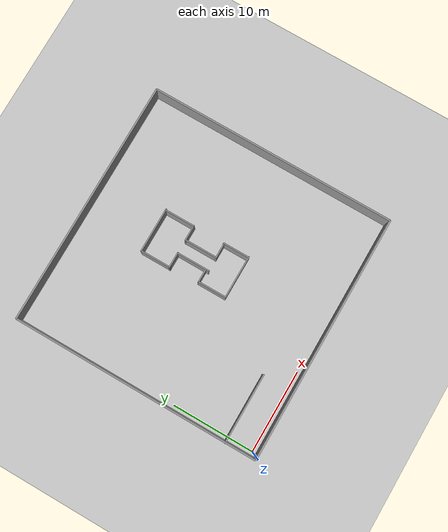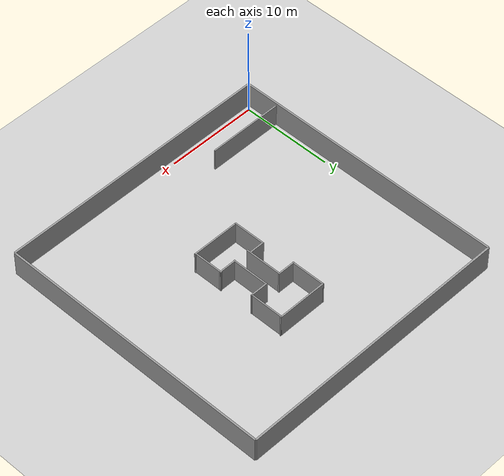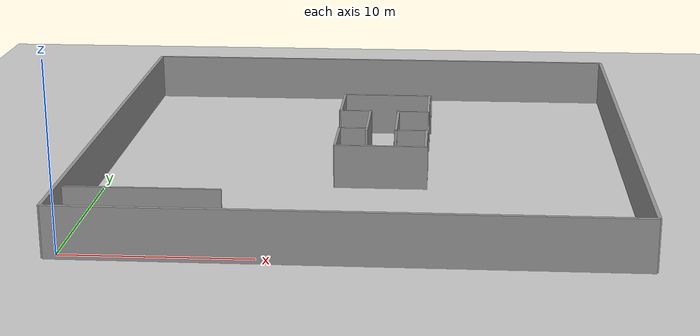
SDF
<?xml version="1.0" ?>

    <!-- this file is auto generated using pedsim_gazebo_plugin pkg -->
    <sdf version="1.5">
      <world name="default">

      <!-- Ground Plane -->

      <include>
        <uri>model://ground_plane</uri>
      </include>

      <include>
        <uri>model://sun</uri>
      </include>

     <model name='grey_wall_1'>
      <static>1</static>
      <link name='link'>

	  <pose frame=''>14.5 -0.5  1.4 0 0 0.0</pose>

        <collision name='collision'>
          <geometry>
            <box>

	     <size> 30.0 .2  2.8 </size>

      	   </box>
          </geometry>
          <max_contacts>10</max_contacts>
          <surface>
            <contact>
              <ode/>
            </contact>
            <bounce/>
            <friction>
              <torsional>
                <ode/>
              </torsional>
              <ode/>
            </friction>
          </surface>
        </collision>
        <visual name='visual'>
          <cast_shadows>0</cast_shadows>
          <geometry>
            <box>

	     <size> 30.0 .2  2.8 </size>

      	   </box>
       </geometry>
          <material>
            <script>
              <uri>model://grey_wall/materials/scripts</uri>
              <uri>model://grey_wall/materials/textures</uri>
              <name>vrc/grey_wall</name>
            </script>
          </material>
        </visual>
        <self_collide>0</self_collide>
        <enable_wind>0</enable_wind>
        <kinematic>0</kinematic>
      </link>
    </model>

     <model name='grey_wall_2'>
      <static>1</static>
      <link name='link'>

	  <pose frame=''>-0.5 14.5  1.4 0 0 1.57</pose>

        <collision name='collision'>
          <geometry>
            <box>

	     <size> 30.0 .2  2.8 </size>

      	   </box>
          </geometry>
          <max_contacts>10</max_contacts>
          <surface>
            <contact>
              <ode/>
            </contact>
            <bounce/>
            <friction>
              <torsional>
                <ode/>
              </torsional>
              <ode/>
            </friction>
          </surface>
        </collision>
        <visual name='visual'>
          <cast_shadows>0</cast_shadows>
          <geometry>
            <box>

	     <size> 30.0 .2  2.8 </size>

      	   </box>
       </geometry>
          <material>
            <script>
              <uri>model://grey_wall/materials/scripts</uri>
              <uri>model://grey_wall/materials/textures</uri>
              <name>vrc/grey_wall</name>
            </script>
          </material>
        </visual>
        <self_collide>0</self_collide>
        <enable_wind>0</enable_wind>
        <kinematic>0</kinematic>
      </link>
    </model>

     <model name='grey_wall_3'>
      <static>1</static>
      <link name='link'>

	  <pose frame=''>14.5 29.5  1.4 0 0 0.0</pose>

        <collision name='collision'>
          <geometry>
            <box>

	     <size> 30.0 .2  2.8 </size>

      	   </box>
          </geometry>
          <max_contacts>10</max_contacts>
          <surface>
            <contact>
              <ode/>
            </contact>
            <bounce/>
            <friction>
              <torsional>
                <ode/>
              </torsional>
              <ode/>
            </friction>
          </surface>
        </collision>
        <visual name='visual'>
          <cast_shadows>0</cast_shadows>
          <geometry>
            <box>

	     <size> 30.0 .2  2.8 </size>

      	   </box>
       </geometry>
          <material>
            <script>
              <uri>model://grey_wall/materials/scripts</uri>
              <uri>model://grey_wall/materials/textures</uri>
              <name>vrc/grey_wall</name>
            </script>
          </material>
        </visual>
        <self_collide>0</self_collide>
        <enable_wind>0</enable_wind>
        <kinematic>0</kinematic>
      </link>
    </model>

     <model name='grey_wall_4'>
      <static>1</static>
      <link name='link'>

	  <pose frame=''>29.5 14.5  1.4 0 0 1.57</pose>

        <collision name='collision'>
          <geometry>
            <box>

	     <size> 30.0 .2  2.8 </size>

      	   </box>
          </geometry>
          <max_contacts>10</max_contacts>
          <surface>
            <contact>
              <ode/>
            </contact>
            <bounce/>
            <friction>
              <torsional>
                <ode/>
              </torsional>
              <ode/>
            </friction>
          </surface>
        </collision>
        <visual name='visual'>
          <cast_shadows>0</cast_shadows>
          <geometry>
            <box>

	     <size> 30.0 .2  2.8 </size>

      	   </box>
       </geometry>
          <material>
            <script>
              <uri>model://grey_wall/materials/scripts</uri>
              <uri>model://grey_wall/materials/textures</uri>
              <name>vrc/grey_wall</name>
            </script>
          </material>
        </visual>
        <self_collide>0</self_collide>
        <enable_wind>0</enable_wind>
        <kinematic>0</kinematic>
      </link>
    </model>

    <model name='pedsim_model2'>
    <pose>-15854.3 -11256.4 0 0 -0 0</pose>
    <link name='Wall_27'>
      <collision name='Wall_27_Collision'>
        <geometry>
          <box>
            <size>8.5 0.15 2.5</size>
          </box>
        </geometry>
        <pose>0 0 1.25 0 -0 0</pose>
      </collision>
      <visual name='Wall_27_Visual'>
        <pose>0 0 1.25 0 -0 0</pose>
        <geometry>
          <box>
            <size>8.5 0.15 2.5</size>
          </box>
        </geometry>
        <material>
          <script>
            <uri>file://media/materials/scripts/gazebo.material</uri>
            <name>Gazebo/Grey</name>
          </script>
          <ambient>1 1 1 1</ambient>
        </material>
        <meta>
          <layer>0</layer>
        </meta>
      </visual>
      <pose>15857.9 11259.6 0 0 -0 3.14159</pose>
    </link>
    <link name='Wall_31'>
      <collision name='Wall_31_Collision'>
        <geometry>
          <box>
            <size>4 0.15 2.5</size>
          </box>
        </geometry>
        <pose>0 0 1.25 0 -0 0</pose>
      </collision>
      <visual name='Wall_31_Visual'>
        <pose>0 0 1.25 0 -0 0</pose>
        <geometry>
          <box>
            <size>4 0.15 2.5</size>
          </box>
        </geometry>
        <material>
          <script>
            <uri>file://media/materials/scripts/gazebo.material</uri>
            <name>Gazebo/Grey</name>
          </script>
          <ambient>1 1 1 1</ambient>
        </material>
        <meta>
          <layer>0</layer>
        </meta>
      </visual>
      <pose>15868.9 11272.4 0 0 -0 1.5708</pose>
    </link>
    <link name='Wall_32'>
      <collision name='Wall_32_Collision'>
        <geometry>
          <box>
            <size>2 0.15 2.5</size>
          </box>
        </geometry>
        <pose>0 0 1.25 0 -0 0</pose>
      </collision>
      <visual name='Wall_32_Visual'>
        <pose>0 0 1.25 0 -0 0</pose>
        <geometry>
          <box>
            <size>2 0.15 2.5</size>
          </box>
        </geometry>
        <material>
          <script>
            <uri>file://media/materials/scripts/gazebo.material</uri>
            <name>Gazebo/Grey</name>
          </script>
          <ambient>1 1 1 1</ambient>
        </material>
        <meta>
          <layer>0</layer>
        </meta>
      </visual>
      <pose>15868 11274.4 0 0 -0 3.14159</pose>
    </link>
    <link name='Wall_33'>
      <collision name='Wall_33_Collision'>
        <geometry>
          <box>
            <size>3.75 0.15 2.5</size>
          </box>
        </geometry>
        <pose>0 0 1.25 0 -0 0</pose>
      </collision>
      <visual name='Wall_33_Visual'>
        <pose>0 0 1.25 0 -0 0</pose>
        <geometry>
          <box>
            <size>3.75 0.15 2.5</size>
          </box>
        </geometry>
        <material>
          <script>
            <uri>file://media/materials/scripts/gazebo.material</uri>
            <name>Gazebo/Grey</name>
          </script>
          <ambient>1 1 1 1</ambient>
        </material>
        <meta>
          <layer>0</layer>
        </meta>
      </visual>
      <pose>15867.1 11276.2 0 0 -0 1.5708</pose>
    </link>
    <link name='Wall_34'>
      <collision name='Wall_34_Collision'>
        <geometry>
          <box>
            <size>5.5 0.15 2.5</size>
          </box>
        </geometry>
        <pose>0 0 1.25 0 -0 0</pose>
      </collision>
      <visual name='Wall_34_Visual'>
        <pose>0 0 1.25 0 -0 0</pose>
        <geometry>
          <box>
            <size>5.5 0.15 2.5</size>
          </box>
        </geometry>
        <material>
          <script>
            <uri>file://media/materials/scripts/gazebo.material</uri>
            <name>Gazebo/Grey</name>
          </script>
          <ambient>1 1 1 1</ambient>
        </material>
        <meta>
          <layer>0</layer>
        </meta>
      </visual>
      <pose>15869.8 11278 0 0 -0 0</pose>
    </link>
    <link name='Wall_35'>
      <collision name='Wall_35_Collision'>
        <geometry>
          <box>
            <size>3.75 0.15 2.5</size>
          </box>
        </geometry>
        <pose>0 0 1.25 0 -0 0</pose>
      </collision>
      <visual name='Wall_35_Visual'>
        <pose>0 0 1.25 0 -0 0</pose>
        <geometry>
          <box>
            <size>3.75 0.15 2.5</size>
          </box>
        </geometry>
        <material>
          <script>
            <uri>file://media/materials/scripts/gazebo.material</uri>
            <name>Gazebo/Grey</name>
          </script>
          <ambient>1 1 1 1</ambient>
        </material>
        <meta>
          <layer>0</layer>
        </meta>
      </visual>
      <pose>15872.4 11276.2 0 0 -0 -1.5708</pose>
    </link>
    <link name='Wall_36'>
      <collision name='Wall_36_Collision'>
        <geometry>
          <box>
            <size>2 0.15 2.5</size>
          </box>
        </geometry>
        <pose>0 0 1.25 0 -0 0</pose>
      </collision>
      <visual name='Wall_36_Visual'>
        <pose>0 0 1.25 0 -0 0</pose>
        <geometry>
          <box>
            <size>2 0.15 2.5</size>
          </box>
        </geometry>
        <material>
          <script>
            <uri>file://media/materials/scripts/gazebo.material</uri>
            <name>Gazebo/Grey</name>
          </script>
          <ambient>1 1 1 1</ambient>
        </material>
        <meta>
          <layer>0</layer>
        </meta>
      </visual>
      <pose>15871.5 11274.4 0 0 -0 3.14159</pose>
    </link>
    <link name='Wall_37'>
      <collision name='Wall_37_Collision'>
        <geometry>
          <box>
            <size>4 0.15 2.5</size>
          </box>
        </geometry>
        <pose>0 0 1.25 0 -0 0</pose>
      </collision>
      <visual name='Wall_37_Visual'>
        <pose>0 0 1.25 0 -0 0</pose>
        <geometry>
          <box>
            <size>4 0.15 2.5</size>
          </box>
        </geometry>
        <material>
          <script>
            <uri>file://media/materials/scripts/gazebo.material</uri>
            <name>Gazebo/Grey</name>
          </script>
          <ambient>1 1 1 1</ambient>
        </material>
        <meta>
          <layer>0</layer>
        </meta>
      </visual>
      <pose>15870.6 11272.4 0 0 -0 -1.5708</pose>
    </link>
    <link name='Wall_38'>
      <collision name='Wall_38_Collision'>
        <geometry>
          <box>
            <size>2 0.15 2.5</size>
          </box>
        </geometry>
        <pose>0 0 1.25 0 -0 0</pose>
      </collision>
      <visual name='Wall_38_Visual'>
        <pose>0 0 1.25 0 -0 0</pose>
        <geometry>
          <box>
            <size>2 0.15 2.5</size>
          </box>
        </geometry>
        <material>
          <script>
            <uri>file://media/materials/scripts/gazebo.material</uri>
            <name>Gazebo/Grey</name>
          </script>
          <ambient>1 1 1 1</ambient>
        </material>
        <meta>
          <layer>0</layer>
        </meta>
      </visual>
      <pose>15871.5 11270.5 0 0 -0 0</pose>
    </link>
    <link name='Wall_39'>
      <collision name='Wall_39_Collision'>
        <geometry>
          <box>
            <size>3.25 0.15 2.5</size>
          </box>
        </geometry>
        <pose>0 0 1.25 0 -0 0</pose>
      </collision>
      <visual name='Wall_39_Visual'>
        <pose>0 0 1.25 0 -0 0</pose>
        <geometry>
          <box>
            <size>3.25 0.15 2.5</size>
          </box>
        </geometry>
        <material>
          <script>
            <uri>file://media/materials/scripts/gazebo.material</uri>
            <name>Gazebo/Grey</name>
          </script>
          <ambient>1 1 1 1</ambient>
        </material>
        <meta>
          <layer>0</layer>
        </meta>
      </visual>
      <pose>15872.4 11269 0 0 -0 -1.5708</pose>
    </link>
    <link name='Wall_4'>
      <collision name='Wall_4_Collision'>
        <geometry>
          <box>
            <size>14463 0.15 2.5</size>
          </box>
        </geometry>
        <pose>0 0 1.25 0 -0 0</pose>
      </collision>
      <visual name='Wall_4_Visual'>
        <pose>0 0 1.25 0 -0 0</pose>
        <geometry>
          <box>
            <size>14463 0.15 2.5</size>
          </box>
        </geometry>
        <material>
          <script>
            <uri>file://media/materials/scripts/gazebo.material</uri>
            <name>Gazebo/Grey</name>
          </script>
          <ambient>1 1 1 1</ambient>
        </material>
        <meta>
          <layer>0</layer>
        </meta>
      </visual>
      <pose>-10759 -6164.53 0 0 -0 2.35619</pose>
    </link>
    <link name='Wall_40'>
      <collision name='Wall_40_Collision'>
        <geometry>
          <box>
            <size>5.25 0.15 2.5</size>
          </box>
        </geometry>
        <pose>0 0 1.25 0 -0 0</pose>
      </collision>
      <visual name='Wall_40_Visual'>
        <pose>0 0 1.25 0 -0 0</pose>
        <geometry>
          <box>
            <size>5.25 0.15 2.5</size>
          </box>
        </geometry>
        <material>
          <script>
            <uri>file://media/materials/scripts/gazebo.material</uri>
            <name>Gazebo/Grey</name>
          </script>
          <ambient>1 1 1 1</ambient>
        </material>
        <meta>
          <layer>0</layer>
        </meta>
      </visual>
      <pose>15869.9 11267.4 0 0 -0 3.14159</pose>
    </link>
    <link name='Wall_41'>
      <collision name='Wall_41_Collision'>
        <geometry>
          <box>
            <size>3.5 0.15 2.5</size>
          </box>
        </geometry>
        <pose>0 0 1.25 0 -0 0</pose>
      </collision>
      <visual name='Wall_41_Visual'>
        <pose>0 0 1.25 0 -0 0</pose>
        <geometry>
          <box>
            <size>3.5 0.15 2.5</size>
          </box>
        </geometry>
        <material>
          <script>
            <uri>file://media/materials/scripts/gazebo.material</uri>
            <name>Gazebo/Grey</name>
          </script>
          <ambient>1 1 1 1</ambient>
        </material>
        <meta>
          <layer>0</layer>
        </meta>
      </visual>
      <pose>15867.3 11269.1 0 0 -0 1.5708</pose>
    </link>
    <link name='Wall_42'>
      <collision name='Wall_42_Collision'>
        <geometry>
          <box>
            <size>1.75 0.15 2.5</size>
          </box>
        </geometry>
        <pose>0 0 1.25 0 -0 0</pose>
      </collision>
      <visual name='Wall_42_Visual'>
        <pose>0 0 1.25 0 -0 0</pose>
        <geometry>
          <box>
            <size>1.75 0.15 2.5</size>
          </box>
        </geometry>
        <material>
          <script>
            <uri>file://media/materials/scripts/gazebo.material</uri>
            <name>Gazebo/Grey</name>
          </script>
          <ambient>1 1 1 1</ambient>
        </material>
        <meta>
          <layer>0</layer>
        </meta>
      </visual>
      <pose>15868.1 11270.8 0 0 -0 0</pose>
    </link>
    <static>1</static>
  </model>

            <plugin name="ActorPosesPlugin" filename="libActorPosesPlugin.so">
        </plugin>

      </world>
    </sdf>
